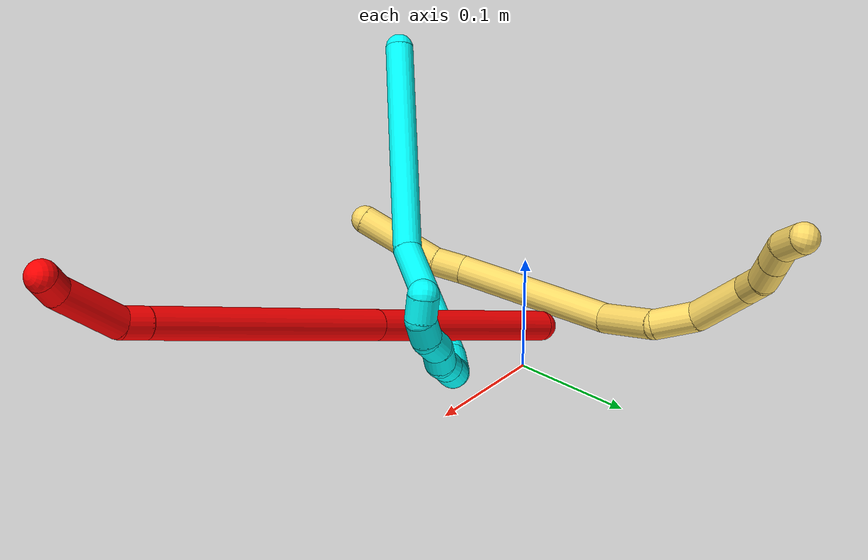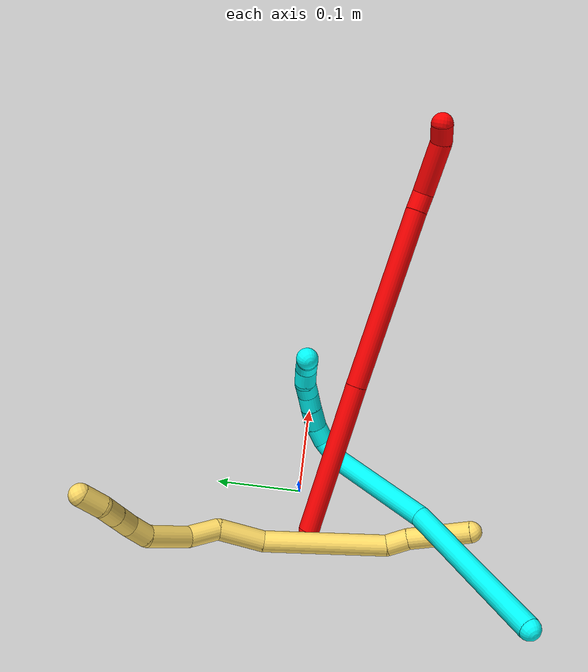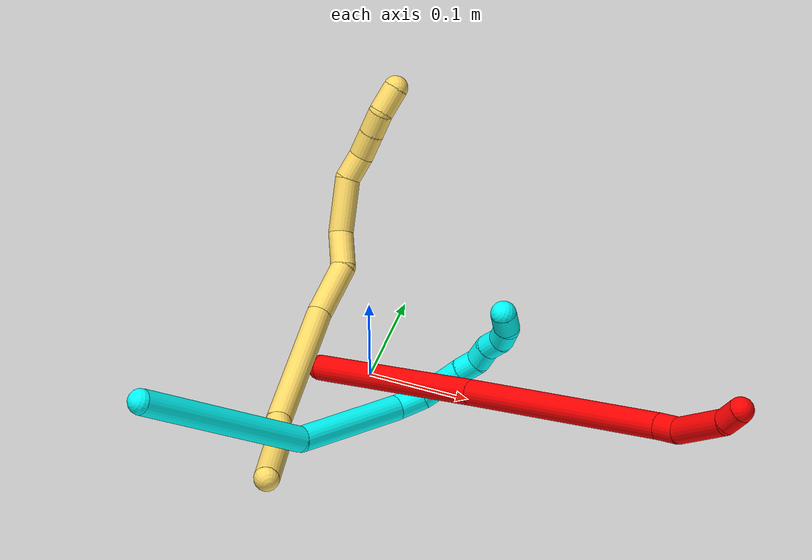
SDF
<sdf version="1.7">
 <world name="default">
  <model name="2">
   <static>0</static>
   <link name="2">
    <collision name="collision-cylinder-e_1_1_4">
     <pose>0.016838 -0.003649 0.089598 0.040701 0.185608 0.003789</pose>
     <geometry><cylinder><radius>0.0125</radius><length>0.182479</length></cylinder></geometry>
     <surface>
      <friction><ode><mu>1.16</mu><mu2>1.16</mu2><slip1>0</slip1><slip2>0</slip2></ode></friction>
      <contact><ode><kp>1e+06</kp><kd>1</kd><max_vel>0</max_vel><min_depth>0.001</min_depth></ode></contact>
     </surface>
    </collision>
    <visual name="visual-cylinder-e_1_1_4">
     <pose>0.016838 -0.003649 0.089598 0.040701 0.185608 0.003789</pose>
     <geometry><cylinder><radius>0.0125</radius><length>0.182479</length></cylinder></geometry>
     <material><ambient>1 0 0 1</ambient></material>
    </visual>
    <collision name="collision-cylinder-e_2_4_5">
     <pose>0.054227 -0.012598 0.283583 0.050736 0.194154 0.004942</pose>
     <geometry><cylinder><radius>0.0125</radius><length>0.213045</length></cylinder></geometry>
     <surface>
      <friction><ode><mu>1.16</mu><mu2>1.16</mu2><slip1>0</slip1><slip2>0</slip2></ode></friction>
      <contact><ode><kp>1e+06</kp><kd>1</kd><max_vel>0</max_vel><min_depth>0.001</min_depth></ode></contact>
     </surface>
    </collision>
    <visual name="visual-cylinder-e_2_4_5">
     <pose>0.054227 -0.012598 0.283583 0.050736 0.194154 0.004942</pose>
     <geometry><cylinder><radius>0.0125</radius><length>0.213045</length></cylinder></geometry>
     <material><ambient>1 0 0 1</ambient></material>
    </visual>
    <collision name="collision-cylinder-e_3_5_6">
     <pose>0.077257 -0.018692 0.398516 0.075031 0.230072 0.008674</pose>
     <geometry><cylinder><radius>0.0125</radius><length>0.021726</length></cylinder></geometry>
     <surface>
      <friction><ode><mu>1.16</mu><mu2>1.16</mu2><slip1>0</slip1><slip2>0</slip2></ode></friction>
      <contact><ode><kp>1e+06</kp><kd>1</kd><max_vel>0</max_vel><min_depth>0.001</min_depth></ode></contact>
     </surface>
    </collision>
    <visual name="visual-cylinder-e_3_5_6">
     <pose>0.077257 -0.018692 0.398516 0.075031 0.230072 0.008674</pose>
     <geometry><cylinder><radius>0.0125</radius><length>0.021726</length></cylinder></geometry>
     <material><ambient>1 0 0 1</ambient></material>
    </visual>
    <collision name="collision-cylinder-e_4_6_7">
     <pose>0.075902 -0.027301 0.438291 0.261329 -0.125984 -0.016577</pose>
     <geometry><cylinder><radius>0.0125</radius><length>0.060993</length></cylinder></geometry>
     <surface>
      <friction><ode><mu>1.16</mu><mu2>1.16</mu2><slip1>0</slip1><slip2>0</slip2></ode></friction>
      <contact><ode><kp>1e+06</kp><kd>1</kd><max_vel>0</max_vel><min_depth>0.001</min_depth></ode></contact>
     </surface>
    </collision>
    <visual name="visual-cylinder-e_4_6_7">
     <pose>0.075902 -0.027301 0.438291 0.261329 -0.125984 -0.016577</pose>
     <geometry><cylinder><radius>0.0125</radius><length>0.060993</length></cylinder></geometry>
     <material><ambient>1 0 0 1</ambient></material>
    </visual>
    <collision name="collision-cylinder-e_5_7_2">
     <pose>0.067057 -0.036655 0.47705 0.159932 -0.478965 -0.039129</pose>
     <geometry><cylinder><radius>0.0125</radius><length>0.021757</length></cylinder></geometry>
     <surface>
      <friction><ode><mu>1.16</mu><mu2>1.16</mu2><slip1>0</slip1><slip2>0</slip2></ode></friction>
      <contact><ode><kp>1e+06</kp><kd>1</kd><max_vel>0</max_vel><min_depth>0.001</min_depth></ode></contact>
     </surface>
    </collision>
    <visual name="visual-cylinder-e_5_7_2">
     <pose>0.067057 -0.036655 0.47705 0.159932 -0.478965 -0.039129</pose>
     <geometry><cylinder><radius>0.0125</radius><length>0.021757</length></cylinder></geometry>
     <material><ambient>1 0 0 1</ambient></material>
    </visual>
    <collision name="collision-sphere-2">
     <pose>0.062043 -0.038193 0.486581 0 -0 0</pose>
     <geometry><sphere><radius>0.0125</radius></sphere></geometry>
     <surface>
      <friction><ode><mu>1.16</mu><mu2>1.16</mu2><slip1>0</slip1><slip2>0</slip2></ode></friction>
      <contact><ode><kp>1e+06</kp><kd>1</kd><max_vel>0</max_vel><min_depth>0.001</min_depth></ode></contact>
     </surface>
    </collision>
    <visual name="visual-sphere-2">
     <pose>0.062043 -0.038193 0.486581 0 -0 0</pose>
     <geometry><sphere><radius>0.0125</radius></sphere></geometry>
     <material><ambient>1 0 0 1</ambient></material>
    </visual>
    <collision name="collision-sphere-7">
     <pose>0.07207 -0.035118 0.467518 0 -0 0</pose>
     <geometry><sphere><radius>0.0125</radius></sphere></geometry>
     <surface>
      <friction><ode><mu>1.16</mu><mu2>1.16</mu2><slip1>0</slip1><slip2>0</slip2></ode></friction>
      <contact><ode><kp>1e+06</kp><kd>1</kd><max_vel>0</max_vel><min_depth>0.001</min_depth></ode></contact>
     </surface>
    </collision>
    <visual name="visual-sphere-7">
     <pose>0.07207 -0.035118 0.467518 0 -0 0</pose>
     <geometry><sphere><radius>0.0125</radius></sphere></geometry>
     <material><ambient>1 0 0 1</ambient></material>
    </visual>
    <collision name="collision-sphere-6">
     <pose>0.079734 -0.019484 0.409063 0 -0 0</pose>
     <geometry><sphere><radius>0.0125</radius></sphere></geometry>
     <surface>
      <friction><ode><mu>1.16</mu><mu2>1.16</mu2><slip1>0</slip1><slip2>0</slip2></ode></friction>
      <contact><ode><kp>1e+06</kp><kd>1</kd><max_vel>0</max_vel><min_depth>0.001</min_depth></ode></contact>
     </surface>
    </collision>
    <visual name="visual-sphere-6">
     <pose>0.079734 -0.019484 0.409063 0 -0 0</pose>
     <geometry><sphere><radius>0.0125</radius></sphere></geometry>
     <material><ambient>1 0 0 1</ambient></material>
    </visual>
    <collision name="collision-sphere-5">
     <pose>0.074779 -0.017899 0.387969 0 -0 0</pose>
     <geometry><sphere><radius>0.0125</radius></sphere></geometry>
     <surface>
      <friction><ode><mu>1.16</mu><mu2>1.16</mu2><slip1>0</slip1><slip2>0</slip2></ode></friction>
      <contact><ode><kp>1e+06</kp><kd>1</kd><max_vel>0</max_vel><min_depth>0.001</min_depth></ode></contact>
     </surface>
    </collision>
    <visual name="visual-sphere-5">
     <pose>0.074779 -0.017899 0.387969 0 -0 0</pose>
     <geometry><sphere><radius>0.0125</radius></sphere></geometry>
     <material><ambient>1 0 0 1</ambient></material>
    </visual>
    <collision name="collision-sphere-1">
     <geometry><sphere><radius>0.0125</radius></sphere></geometry>
     <surface>
      <friction><ode><mu>1.16</mu><mu2>1.16</mu2><slip1>0</slip1><slip2>0</slip2></ode></friction>
      <contact><ode><kp>1e+06</kp><kd>1</kd><max_vel>0</max_vel><min_depth>0.001</min_depth></ode></contact>
     </surface>
    </collision>
    <visual name="visual-sphere-1">
     <geometry><sphere><radius>0.0125</radius></sphere></geometry>
     <material><ambient>1 0 0 1</ambient></material>
    </visual>
    <collision name="collision-sphere-4">
     <pose>0.033675 -0.007297 0.179196 0 -0 0</pose>
     <geometry><sphere><radius>0.0125</radius></sphere></geometry>
     <surface>
      <friction><ode><mu>1.16</mu><mu2>1.16</mu2><slip1>0</slip1><slip2>0</slip2></ode></friction>
      <contact><ode><kp>1e+06</kp><kd>1</kd><max_vel>0</max_vel><min_depth>0.001</min_depth></ode></contact>
     </surface>
    </collision>
    <visual name="visual-sphere-4">
     <pose>0.033675 -0.007297 0.179196 0 -0 0</pose>
     <geometry><sphere><radius>0.0125</radius></sphere></geometry>
     <material><ambient>1 0 0 1</ambient></material>
    </visual>
    <inertial>
     <pose>0.044785 -0.012437 0.245071 0 -0 0</pose>
     <mass>0.5</mass>
     <inertia>
      <ixx>0.001338</ixx>
      <ixy>0</ixy>
      <ixz>0</ixz>
      <iyy>0.001353</iyy>
      <iyz>0</iyz>
      <izz>-0.000144</izz>
     </inertia>
    </inertial>
   </link>
   <pose>-0.045713 -0.01738 0.011486 -0.827673 0.813011 -1.04041</pose>
  </model>
  <model name="3">
   <static>0</static>
   <link name="3">
    <collision name="collision-cylinder-e_1_1_4">
     <pose>-0.005636 0.009255 -0.098503 -3.04791 -0.056909 1.09134</pose>
     <geometry><cylinder><radius>0.0125</radius><length>0.198195</length></cylinder></geometry>
     <surface>
      <friction><ode><mu>1.16</mu><mu2>1.16</mu2><slip1>0</slip1><slip2>0</slip2></ode></friction>
      <contact><ode><kp>1e+06</kp><kd>1</kd><max_vel>0</max_vel><min_depth>0.001</min_depth></ode></contact>
     </surface>
    </collision>
    <visual name="visual-cylinder-e_1_1_4">
     <pose>-0.005636 0.009255 -0.098503 -3.04791 -0.056909 1.09134</pose>
     <geometry><cylinder><radius>0.0125</radius><length>0.198195</length></cylinder></geometry>
     <material><ambient>0.003922 1 0.996078 1</ambient></material>
    </visual>
    <collision name="collision-cylinder-e_2_4_5">
     <pose>-0.00883 0.048797 -0.2509 -2.62962 0.039489 -0.150612</pose>
     <geometry><cylinder><radius>0.0125</radius><length>0.123739</length></cylinder></geometry>
     <surface>
      <friction><ode><mu>1.16</mu><mu2>1.16</mu2><slip1>0</slip1><slip2>0</slip2></ode></friction>
      <contact><ode><kp>1e+06</kp><kd>1</kd><max_vel>0</max_vel><min_depth>0.001</min_depth></ode></contact>
     </surface>
    </collision>
    <visual name="visual-cylinder-e_2_4_5">
     <pose>-0.00883 0.048797 -0.2509 -2.62962 0.039489 -0.150612</pose>
     <geometry><cylinder><radius>0.0125</radius><length>0.123739</length></cylinder></geometry>
     <material><ambient>0.003922 1 0.996078 1</ambient></material>
    </visual>
    <collision name="collision-cylinder-e_3_5_6">
     <pose>0.000256 0.086806 -0.314841 -2.48619 0.482936 -1.25386</pose>
     <geometry><cylinder><radius>0.0125</radius><length>0.028615</length></cylinder></geometry>
     <surface>
      <friction><ode><mu>1.16</mu><mu2>1.16</mu2><slip1>0</slip1><slip2>0</slip2></ode></friction>
      <contact><ode><kp>1e+06</kp><kd>1</kd><max_vel>0</max_vel><min_depth>0.001</min_depth></ode></contact>
     </surface>
    </collision>
    <visual name="visual-cylinder-e_3_5_6">
     <pose>0.000256 0.086806 -0.314841 -2.48619 0.482936 -1.25386</pose>
     <geometry><cylinder><radius>0.0125</radius><length>0.028615</length></cylinder></geometry>
     <material><ambient>0.003922 1 0.996078 1</ambient></material>
    </visual>
    <collision name="collision-cylinder-e_4_6_7">
     <pose>0.01546 0.100808 -0.328613 -2.10646 0.864518 -1.36203</pose>
     <geometry><cylinder><radius>0.0125</radius><length>0.022501</length></cylinder></geometry>
     <surface>
      <friction><ode><mu>1.16</mu><mu2>1.16</mu2><slip1>0</slip1><slip2>0</slip2></ode></friction>
      <contact><ode><kp>1e+06</kp><kd>1</kd><max_vel>0</max_vel><min_depth>0.001</min_depth></ode></contact>
     </surface>
    </collision>
    <visual name="visual-cylinder-e_4_6_7">
     <pose>0.01546 0.100808 -0.328613 -2.10646 0.864518 -1.36203</pose>
     <geometry><cylinder><radius>0.0125</radius><length>0.022501</length></cylinder></geometry>
     <material><ambient>0.003922 1 0.996078 1</ambient></material>
    </visual>
    <collision name="collision-cylinder-e_5_7_8">
     <pose>0.035534 0.113024 -0.333895 -1.82699 1.08109 -1.32191</pose>
     <geometry><cylinder><radius>0.0125</radius><length>0.026098</length></cylinder></geometry>
     <surface>
      <friction><ode><mu>1.16</mu><mu2>1.16</mu2><slip1>0</slip1><slip2>0</slip2></ode></friction>
      <contact><ode><kp>1e+06</kp><kd>1</kd><max_vel>0</max_vel><min_depth>0.001</min_depth></ode></contact>
     </surface>
    </collision>
    <visual name="visual-cylinder-e_5_7_8">
     <pose>0.035534 0.113024 -0.333895 -1.82699 1.08109 -1.32191</pose>
     <geometry><cylinder><radius>0.0125</radius><length>0.026098</length></cylinder></geometry>
     <material><ambient>0.003922 1 0.996078 1</ambient></material>
    </visual>
    <collision name="collision-cylinder-e_6_8_9">
     <pose>0.056256 0.123103 -0.337199 -1.97019 1.1166 -1.51062</pose>
     <geometry><cylinder><radius>0.0125</radius><length>0.020491</length></cylinder></geometry>
     <surface>
      <friction><ode><mu>1.16</mu><mu2>1.16</mu2><slip1>0</slip1><slip2>0</slip2></ode></friction>
      <contact><ode><kp>1e+06</kp><kd>1</kd><max_vel>0</max_vel><min_depth>0.001</min_depth></ode></contact>
     </surface>
    </collision>
    <visual name="visual-cylinder-e_6_8_9">
     <pose>0.056256 0.123103 -0.337199 -1.97019 1.1166 -1.51062</pose>
     <geometry><cylinder><radius>0.0125</radius><length>0.020491</length></cylinder></geometry>
     <material><ambient>0.003922 1 0.996078 1</ambient></material>
    </visual>
    <collision name="collision-cylinder-e_7_9_10">
     <pose>0.073926 0.132318 -0.33659 -1.13608 0.986711 -0.661147</pose>
     <geometry><cylinder><radius>0.0125</radius><length>0.020291</length></cylinder></geometry>
     <surface>
      <friction><ode><mu>1.16</mu><mu2>1.16</mu2><slip1>0</slip1><slip2>0</slip2></ode></friction>
      <contact><ode><kp>1e+06</kp><kd>1</kd><max_vel>0</max_vel><min_depth>0.001</min_depth></ode></contact>
     </surface>
    </collision>
    <visual name="visual-cylinder-e_7_9_10">
     <pose>0.073926 0.132318 -0.33659 -1.13608 0.986711 -0.661147</pose>
     <geometry><cylinder><radius>0.0125</radius><length>0.020291</length></cylinder></geometry>
     <material><ambient>0.003922 1 0.996078 1</ambient></material>
    </visual>
    <collision name="collision-cylinder-e_8_10_11">
     <pose>0.092115 0.139697 -0.333686 -1.33717 1.33184 -1.11087</pose>
     <geometry><cylinder><radius>0.0125</radius><length>0.02002</length></cylinder></geometry>
     <surface>
      <friction><ode><mu>1.16</mu><mu2>1.16</mu2><slip1>0</slip1><slip2>0</slip2></ode></friction>
      <contact><ode><kp>1e+06</kp><kd>1</kd><max_vel>0</max_vel><min_depth>0.001</min_depth></ode></contact>
     </surface>
    </collision>
    <visual name="visual-cylinder-e_8_10_11">
     <pose>0.092115 0.139697 -0.333686 -1.33717 1.33184 -1.11087</pose>
     <geometry><cylinder><radius>0.0125</radius><length>0.02002</length></cylinder></geometry>
     <material><ambient>0.003922 1 0.996078 1</ambient></material>
    </visual>
    <collision name="collision-cylinder-e_9_11_12">
     <pose>0.110116 0.145369 -0.328601 -0.638452 0.971872 -0.345675</pose>
     <geometry><cylinder><radius>0.0125</radius><length>0.020039</length></cylinder></geometry>
     <surface>
      <friction><ode><mu>1.16</mu><mu2>1.16</mu2><slip1>0</slip1><slip2>0</slip2></ode></friction>
      <contact><ode><kp>1e+06</kp><kd>1</kd><max_vel>0</max_vel><min_depth>0.001</min_depth></ode></contact>
     </surface>
    </collision>
    <visual name="visual-cylinder-e_9_11_12">
     <pose>0.110116 0.145369 -0.328601 -0.638452 0.971872 -0.345675</pose>
     <geometry><cylinder><radius>0.0125</radius><length>0.020039</length></cylinder></geometry>
     <material><ambient>0.003922 1 0.996078 1</ambient></material>
    </visual>
    <collision name="collision-cylinder-e_10_12_2">
     <pose>0.123194 0.153272 -0.316551 -0.543188 0.500563 -0.14214</pose>
     <geometry><cylinder><radius>0.0125</radius><length>0.020012</length></cylinder></geometry>
     <surface>
      <friction><ode><mu>1.16</mu><mu2>1.16</mu2><slip1>0</slip1><slip2>0</slip2></ode></friction>
      <contact><ode><kp>1e+06</kp><kd>1</kd><max_vel>0</max_vel><min_depth>0.001</min_depth></ode></contact>
     </surface>
    </collision>
    <visual name="visual-cylinder-e_10_12_2">
     <pose>0.123194 0.153272 -0.316551 -0.543188 0.500563 -0.14214</pose>
     <geometry><cylinder><radius>0.0125</radius><length>0.020012</length></cylinder></geometry>
     <material><ambient>0.003922 1 0.996078 1</ambient></material>
    </visual>
    <collision name="collision-sphere-2">
     <pose>0.127996 0.157809 -0.309036 0 -0 0</pose>
     <geometry><sphere><radius>0.0125</radius></sphere></geometry>
     <surface>
      <friction><ode><mu>1.16</mu><mu2>1.16</mu2><slip1>0</slip1><slip2>0</slip2></ode></friction>
      <contact><ode><kp>1e+06</kp><kd>1</kd><max_vel>0</max_vel><min_depth>0.001</min_depth></ode></contact>
     </surface>
    </collision>
    <visual name="visual-sphere-2">
     <pose>0.127996 0.157809 -0.309036 0 -0 0</pose>
     <geometry><sphere><radius>0.0125</radius></sphere></geometry>
     <material><ambient>0.003922 1 0.996078 1</ambient></material>
    </visual>
    <collision name="collision-sphere-12">
     <pose>0.118392 0.148735 -0.324065 0 -0 0</pose>
     <geometry><sphere><radius>0.0125</radius></sphere></geometry>
     <surface>
      <friction><ode><mu>1.16</mu><mu2>1.16</mu2><slip1>0</slip1><slip2>0</slip2></ode></friction>
      <contact><ode><kp>1e+06</kp><kd>1</kd><max_vel>0</max_vel><min_depth>0.001</min_depth></ode></contact>
     </surface>
    </collision>
    <visual name="visual-sphere-12">
     <pose>0.118392 0.148735 -0.324065 0 -0 0</pose>
     <geometry><sphere><radius>0.0125</radius></sphere></geometry>
     <material><ambient>0.003922 1 0.996078 1</ambient></material>
    </visual>
    <collision name="collision-sphere-11">
     <pose>0.101841 0.142002 -0.333137 0 -0 0</pose>
     <geometry><sphere><radius>0.0125</radius></sphere></geometry>
     <surface>
      <friction><ode><mu>1.16</mu><mu2>1.16</mu2><slip1>0</slip1><slip2>0</slip2></ode></friction>
      <contact><ode><kp>1e+06</kp><kd>1</kd><max_vel>0</max_vel><min_depth>0.001</min_depth></ode></contact>
     </surface>
    </collision>
    <visual name="visual-sphere-11">
     <pose>0.101841 0.142002 -0.333137 0 -0 0</pose>
     <geometry><sphere><radius>0.0125</radius></sphere></geometry>
     <material><ambient>0.003922 1 0.996078 1</ambient></material>
    </visual>
    <collision name="collision-sphere-10">
     <pose>0.08239 0.137392 -0.334234 0 -0 0</pose>
     <geometry><sphere><radius>0.0125</radius></sphere></geometry>
     <surface>
      <friction><ode><mu>1.16</mu><mu2>1.16</mu2><slip1>0</slip1><slip2>0</slip2></ode></friction>
      <contact><ode><kp>1e+06</kp><kd>1</kd><max_vel>0</max_vel><min_depth>0.001</min_depth></ode></contact>
     </surface>
    </collision>
    <visual name="visual-sphere-10">
     <pose>0.08239 0.137392 -0.334234 0 -0 0</pose>
     <geometry><sphere><radius>0.0125</radius></sphere></geometry>
     <material><ambient>0.003922 1 0.996078 1</ambient></material>
    </visual>
    <collision name="collision-sphere-9">
     <pose>0.065462 0.127244 -0.338947 0 -0 0</pose>
     <geometry><sphere><radius>0.0125</radius></sphere></geometry>
     <surface>
      <friction><ode><mu>1.16</mu><mu2>1.16</mu2><slip1>0</slip1><slip2>0</slip2></ode></friction>
      <contact><ode><kp>1e+06</kp><kd>1</kd><max_vel>0</max_vel><min_depth>0.001</min_depth></ode></contact>
     </surface>
    </collision>
    <visual name="visual-sphere-9">
     <pose>0.065462 0.127244 -0.338947 0 -0 0</pose>
     <geometry><sphere><radius>0.0125</radius></sphere></geometry>
     <material><ambient>0.003922 1 0.996078 1</ambient></material>
    </visual>
    <collision name="collision-sphere-4">
     <pose>-0.011273 0.018511 -0.197006 0 -0 0</pose>
     <geometry><sphere><radius>0.0125</radius></sphere></geometry>
     <surface>
      <friction><ode><mu>1.16</mu><mu2>1.16</mu2><slip1>0</slip1><slip2>0</slip2></ode></friction>
      <contact><ode><kp>1e+06</kp><kd>1</kd><max_vel>0</max_vel><min_depth>0.001</min_depth></ode></contact>
     </surface>
    </collision>
    <visual name="visual-sphere-4">
     <pose>-0.011273 0.018511 -0.197006 0 -0 0</pose>
     <geometry><sphere><radius>0.0125</radius></sphere></geometry>
     <material><ambient>0.003922 1 0.996078 1</ambient></material>
    </visual>
    <collision name="collision-sphere-1">
     <geometry><sphere><radius>0.0125</radius></sphere></geometry>
     <surface>
      <friction><ode><mu>1.16</mu><mu2>1.16</mu2><slip1>0</slip1><slip2>0</slip2></ode></friction>
      <contact><ode><kp>1e+06</kp><kd>1</kd><max_vel>0</max_vel><min_depth>0.001</min_depth></ode></contact>
     </surface>
    </collision>
    <visual name="visual-sphere-1">
     <geometry><sphere><radius>0.0125</radius></sphere></geometry>
     <material><ambient>0.003922 1 0.996078 1</ambient></material>
    </visual>
    <collision name="collision-sphere-8">
     <pose>0.047049 0.118961 -0.335451 0 -0 0</pose>
     <geometry><sphere><radius>0.0125</radius></sphere></geometry>
     <surface>
      <friction><ode><mu>1.16</mu><mu2>1.16</mu2><slip1>0</slip1><slip2>0</slip2></ode></friction>
      <contact><ode><kp>1e+06</kp><kd>1</kd><max_vel>0</max_vel><min_depth>0.001</min_depth></ode></contact>
     </surface>
    </collision>
    <visual name="visual-sphere-8">
     <pose>0.047049 0.118961 -0.335451 0 -0 0</pose>
     <geometry><sphere><radius>0.0125</radius></sphere></geometry>
     <material><ambient>0.003922 1 0.996078 1</ambient></material>
    </visual>
    <collision name="collision-sphere-5">
     <pose>-0.006388 0.079083 -0.304795 0 -0 0</pose>
     <geometry><sphere><radius>0.0125</radius></sphere></geometry>
     <surface>
      <friction><ode><mu>1.16</mu><mu2>1.16</mu2><slip1>0</slip1><slip2>0</slip2></ode></friction>
      <contact><ode><kp>1e+06</kp><kd>1</kd><max_vel>0</max_vel><min_depth>0.001</min_depth></ode></contact>
     </surface>
    </collision>
    <visual name="visual-sphere-5">
     <pose>-0.006388 0.079083 -0.304795 0 -0 0</pose>
     <geometry><sphere><radius>0.0125</radius></sphere></geometry>
     <material><ambient>0.003922 1 0.996078 1</ambient></material>
    </visual>
    <collision name="collision-sphere-6">
     <pose>0.006901 0.094529 -0.324887 0 -0 0</pose>
     <geometry><sphere><radius>0.0125</radius></sphere></geometry>
     <surface>
      <friction><ode><mu>1.16</mu><mu2>1.16</mu2><slip1>0</slip1><slip2>0</slip2></ode></friction>
      <contact><ode><kp>1e+06</kp><kd>1</kd><max_vel>0</max_vel><min_depth>0.001</min_depth></ode></contact>
     </surface>
    </collision>
    <visual name="visual-sphere-6">
     <pose>0.006901 0.094529 -0.324887 0 -0 0</pose>
     <geometry><sphere><radius>0.0125</radius></sphere></geometry>
     <material><ambient>0.003922 1 0.996078 1</ambient></material>
    </visual>
    <collision name="collision-sphere-7">
     <pose>0.024019 0.107087 -0.33234 0 -0 0</pose>
     <geometry><sphere><radius>0.0125</radius></sphere></geometry>
     <surface>
      <friction><ode><mu>1.16</mu><mu2>1.16</mu2><slip1>0</slip1><slip2>0</slip2></ode></friction>
      <contact><ode><kp>1e+06</kp><kd>1</kd><max_vel>0</max_vel><min_depth>0.001</min_depth></ode></contact>
     </surface>
    </collision>
    <visual name="visual-sphere-7">
     <pose>0.024019 0.107087 -0.33234 0 -0 0</pose>
     <geometry><sphere><radius>0.0125</radius></sphere></geometry>
     <material><ambient>0.003922 1 0.996078 1</ambient></material>
    </visual>
    <inertial>
     <pose>0.016483 0.059117 -0.218051 0 -0 0</pose>
     <mass>0.5</mass>
     <inertia>
      <ixx>0.001028</ixx>
      <ixy>0</ixy>
      <ixz>0</ixz>
      <iyy>0.000134</iyy>
      <iyz>0</iyz>
      <izz>-0.000152</izz>
     </inertia>
    </inertial>
   </link>
   <pose>-0.128181 -0.24911 0.177984 0.597598 -0.676034 -0.206358</pose>
  </model>
  <model name="5">
   <static>0</static>
   <link name="5">
    <collision name="collision-cylinder-e_1_1_4">
     <pose>0.010447 0.010792 -0.033918 -2.83355 0.285491 -1.49371</pose>
     <geometry><cylinder><radius>0.0125</radius><length>0.074191</length></cylinder></geometry>
     <surface>
      <friction><ode><mu>1.16</mu><mu2>1.16</mu2><slip1>0</slip1><slip2>0</slip2></ode></friction>
      <contact><ode><kp>1e+06</kp><kd>1</kd><max_vel>0</max_vel><min_depth>0.001</min_depth></ode></contact>
     </surface>
    </collision>
    <visual name="visual-cylinder-e_1_1_4">
     <pose>0.010447 0.010792 -0.033918 -2.83355 0.285491 -1.49371</pose>
     <geometry><cylinder><radius>0.0125</radius><length>0.074191</length></cylinder></geometry>
     <material><ambient>1 0.858824 0.4 1</ambient></material>
    </visual>
    <collision name="collision-cylinder-e_2_4_5">
     <pose>0.02151 0.024422 -0.080826 -2.92649 0.046275 -0.422296</pose>
     <geometry><cylinder><radius>0.0125</radius><length>0.02662</length></cylinder></geometry>
     <surface>
      <friction><ode><mu>1.16</mu><mu2>1.16</mu2><slip1>0</slip1><slip2>0</slip2></ode></friction>
      <contact><ode><kp>1e+06</kp><kd>1</kd><max_vel>0</max_vel><min_depth>0.001</min_depth></ode></contact>
     </surface>
    </collision>
    <visual name="visual-cylinder-e_2_4_5">
     <pose>0.02151 0.024422 -0.080826 -2.92649 0.046275 -0.422296</pose>
     <geometry><cylinder><radius>0.0125</radius><length>0.02662</length></cylinder></geometry>
     <material><ambient>1 0.858824 0.4 1</ambient></material>
    </visual>
    <collision name="collision-cylinder-e_3_5_6">
     <pose>0.025977 0.066424 -0.154521 -2.56864 0.053263 -0.180361</pose>
     <geometry><cylinder><radius>0.0125</radius><length>0.14469</length></cylinder></geometry>
     <surface>
      <friction><ode><mu>1.16</mu><mu2>1.16</mu2><slip1>0</slip1><slip2>0</slip2></ode></friction>
      <contact><ode><kp>1e+06</kp><kd>1</kd><max_vel>0</max_vel><min_depth>0.001</min_depth></ode></contact>
     </surface>
    </collision>
    <visual name="visual-cylinder-e_3_5_6">
     <pose>0.025977 0.066424 -0.154521 -2.56864 0.053263 -0.180361</pose>
     <geometry><cylinder><radius>0.0125</radius><length>0.14469</length></cylinder></geometry>
     <material><ambient>1 0.858824 0.4 1</ambient></material>
    </visual>
    <collision name="collision-cylinder-e_4_6_7">
     <pose>0.026225 0.127308 -0.23259 -2.24518 -0.128878 0.2668</pose>
     <geometry><cylinder><radius>0.0125</radius><length>0.056079</length></cylinder></geometry>
     <surface>
      <friction><ode><mu>1.16</mu><mu2>1.16</mu2><slip1>0</slip1><slip2>0</slip2></ode></friction>
      <contact><ode><kp>1e+06</kp><kd>1</kd><max_vel>0</max_vel><min_depth>0.001</min_depth></ode></contact>
     </surface>
    </collision>
    <visual name="visual-cylinder-e_4_6_7">
     <pose>0.026225 0.127308 -0.23259 -2.24518 -0.128878 0.2668</pose>
     <geometry><cylinder><radius>0.0125</radius><length>0.056079</length></cylinder></geometry>
     <material><ambient>1 0.858824 0.4 1</ambient></material>
    </visual>
    <collision name="collision-cylinder-e_5_7_8">
     <pose>0.014928 0.156641 -0.265048 -2.67442 -0.427038 1.47805</pose>
     <geometry><cylinder><radius>0.0125</radius><length>0.037148</length></cylinder></geometry>
     <surface>
      <friction><ode><mu>1.16</mu><mu2>1.16</mu2><slip1>0</slip1><slip2>0</slip2></ode></friction>
      <contact><ode><kp>1e+06</kp><kd>1</kd><max_vel>0</max_vel><min_depth>0.001</min_depth></ode></contact>
     </surface>
    </collision>
    <visual name="visual-cylinder-e_5_7_8">
     <pose>0.014928 0.156641 -0.265048 -2.67442 -0.427038 1.47805</pose>
     <geometry><cylinder><radius>0.0125</radius><length>0.037148</length></cylinder></geometry>
     <material><ambient>1 0.858824 0.4 1</ambient></material>
    </visual>
    <collision name="collision-cylinder-e_6_8_9">
     <pose>-0.009003 0.181864 -0.29403 -2.2386 -0.626709 1.17818</pose>
     <geometry><cylinder><radius>0.0125</radius><length>0.055376</length></cylinder></geometry>
     <surface>
      <friction><ode><mu>1.16</mu><mu2>1.16</mu2><slip1>0</slip1><slip2>0</slip2></ode></friction>
      <contact><ode><kp>1e+06</kp><kd>1</kd><max_vel>0</max_vel><min_depth>0.001</min_depth></ode></contact>
     </surface>
    </collision>
    <visual name="visual-cylinder-e_6_8_9">
     <pose>-0.009003 0.181864 -0.29403 -2.2386 -0.626709 1.17818</pose>
     <geometry><cylinder><radius>0.0125</radius><length>0.055376</length></cylinder></geometry>
     <material><ambient>1 0.858824 0.4 1</ambient></material>
    </visual>
    <collision name="collision-cylinder-e_7_9_10">
     <pose>-0.030442 0.211384 -0.310828 -1.81046 -0.401095 0.506739</pose>
     <geometry><cylinder><radius>0.0125</radius><length>0.026637</length></cylinder></geometry>
     <surface>
      <friction><ode><mu>1.16</mu><mu2>1.16</mu2><slip1>0</slip1><slip2>0</slip2></ode></friction>
      <contact><ode><kp>1e+06</kp><kd>1</kd><max_vel>0</max_vel><min_depth>0.001</min_depth></ode></contact>
     </surface>
    </collision>
    <visual name="visual-cylinder-e_7_9_10">
     <pose>-0.030442 0.211384 -0.310828 -1.81046 -0.401095 0.506739</pose>
     <geometry><cylinder><radius>0.0125</radius><length>0.026637</length></cylinder></geometry>
     <material><ambient>1 0.858824 0.4 1</ambient></material>
    </visual>
    <collision name="collision-cylinder-e_8_10_11">
     <pose>-0.043524 0.234013 -0.314076 -1.6023 -0.633905 0.652807</pose>
     <geometry><cylinder><radius>0.0125</radius><length>0.026618</length></cylinder></geometry>
     <surface>
      <friction><ode><mu>1.16</mu><mu2>1.16</mu2><slip1>0</slip1><slip2>0</slip2></ode></friction>
      <contact><ode><kp>1e+06</kp><kd>1</kd><max_vel>0</max_vel><min_depth>0.001</min_depth></ode></contact>
     </surface>
    </collision>
    <visual name="visual-cylinder-e_8_10_11">
     <pose>-0.043524 0.234013 -0.314076 -1.6023 -0.633905 0.652807</pose>
     <geometry><cylinder><radius>0.0125</radius><length>0.026618</length></cylinder></geometry>
     <material><ambient>1 0.858824 0.4 1</ambient></material>
    </visual>
    <collision name="collision-cylinder-e_9_11_12">
     <pose>-0.058611 0.254427 -0.314665 -1.59663 -0.638819 0.654385</pose>
     <geometry><cylinder><radius>0.0125</radius><length>0.024165</length></cylinder></geometry>
     <surface>
      <friction><ode><mu>1.16</mu><mu2>1.16</mu2><slip1>0</slip1><slip2>0</slip2></ode></friction>
      <contact><ode><kp>1e+06</kp><kd>1</kd><max_vel>0</max_vel><min_depth>0.001</min_depth></ode></contact>
     </surface>
    </collision>
    <visual name="visual-cylinder-e_9_11_12">
     <pose>-0.058611 0.254427 -0.314665 -1.59663 -0.638819 0.654385</pose>
     <geometry><cylinder><radius>0.0125</radius><length>0.024165</length></cylinder></geometry>
     <material><ambient>1 0.858824 0.4 1</ambient></material>
    </visual>
    <collision name="collision-cylinder-e_10_12_2">
     <pose>-0.070606 0.276863 -0.319096 -1.88791 -0.343147 0.469648</pose>
     <geometry><cylinder><radius>0.0125</radius><length>0.028475</length></cylinder></geometry>
     <surface>
      <friction><ode><mu>1.16</mu><mu2>1.16</mu2><slip1>0</slip1><slip2>0</slip2></ode></friction>
      <contact><ode><kp>1e+06</kp><kd>1</kd><max_vel>0</max_vel><min_depth>0.001</min_depth></ode></contact>
     </surface>
    </collision>
    <visual name="visual-cylinder-e_10_12_2">
     <pose>-0.070606 0.276863 -0.319096 -1.88791 -0.343147 0.469648</pose>
     <geometry><cylinder><radius>0.0125</radius><length>0.028475</length></cylinder></geometry>
     <material><ambient>1 0.858824 0.4 1</ambient></material>
    </visual>
    <collision name="collision-sphere-2">
     <pose>-0.075396 0.289602 -0.323277 0 -0 0</pose>
     <geometry><sphere><radius>0.0125</radius></sphere></geometry>
     <surface>
      <friction><ode><mu>1.16</mu><mu2>1.16</mu2><slip1>0</slip1><slip2>0</slip2></ode></friction>
      <contact><ode><kp>1e+06</kp><kd>1</kd><max_vel>0</max_vel><min_depth>0.001</min_depth></ode></contact>
     </surface>
    </collision>
    <visual name="visual-sphere-2">
     <pose>-0.075396 0.289602 -0.323277 0 -0 0</pose>
     <geometry><sphere><radius>0.0125</radius></sphere></geometry>
     <material><ambient>1 0.858824 0.4 1</ambient></material>
    </visual>
    <collision name="collision-sphere-12">
     <pose>-0.065816 0.264124 -0.314915 0 -0 0</pose>
     <geometry><sphere><radius>0.0125</radius></sphere></geometry>
     <surface>
      <friction><ode><mu>1.16</mu><mu2>1.16</mu2><slip1>0</slip1><slip2>0</slip2></ode></friction>
      <contact><ode><kp>1e+06</kp><kd>1</kd><max_vel>0</max_vel><min_depth>0.001</min_depth></ode></contact>
     </surface>
    </collision>
    <visual name="visual-sphere-12">
     <pose>-0.065816 0.264124 -0.314915 0 -0 0</pose>
     <geometry><sphere><radius>0.0125</radius></sphere></geometry>
     <material><ambient>1 0.858824 0.4 1</ambient></material>
    </visual>
    <collision name="collision-sphere-11">
     <pose>-0.051407 0.244731 -0.314414 0 -0 0</pose>
     <geometry><sphere><radius>0.0125</radius></sphere></geometry>
     <surface>
      <friction><ode><mu>1.16</mu><mu2>1.16</mu2><slip1>0</slip1><slip2>0</slip2></ode></friction>
      <contact><ode><kp>1e+06</kp><kd>1</kd><max_vel>0</max_vel><min_depth>0.001</min_depth></ode></contact>
     </surface>
    </collision>
    <visual name="visual-sphere-11">
     <pose>-0.051407 0.244731 -0.314414 0 -0 0</pose>
     <geometry><sphere><radius>0.0125</radius></sphere></geometry>
     <material><ambient>1 0.858824 0.4 1</ambient></material>
    </visual>
    <collision name="collision-sphere-10">
     <pose>-0.035642 0.223295 -0.313739 0 -0 0</pose>
     <geometry><sphere><radius>0.0125</radius></sphere></geometry>
     <surface>
      <friction><ode><mu>1.16</mu><mu2>1.16</mu2><slip1>0</slip1><slip2>0</slip2></ode></friction>
      <contact><ode><kp>1e+06</kp><kd>1</kd><max_vel>0</max_vel><min_depth>0.001</min_depth></ode></contact>
     </surface>
    </collision>
    <visual name="visual-sphere-10">
     <pose>-0.035642 0.223295 -0.313739 0 -0 0</pose>
     <geometry><sphere><radius>0.0125</radius></sphere></geometry>
     <material><ambient>1 0.858824 0.4 1</ambient></material>
    </visual>
    <collision name="collision-sphere-9">
     <pose>-0.025242 0.199472 -0.307917 0 -0 0</pose>
     <geometry><sphere><radius>0.0125</radius></sphere></geometry>
     <surface>
      <friction><ode><mu>1.16</mu><mu2>1.16</mu2><slip1>0</slip1><slip2>0</slip2></ode></friction>
      <contact><ode><kp>1e+06</kp><kd>1</kd><max_vel>0</max_vel><min_depth>0.001</min_depth></ode></contact>
     </surface>
    </collision>
    <visual name="visual-sphere-9">
     <pose>-0.025242 0.199472 -0.307917 0 -0 0</pose>
     <geometry><sphere><radius>0.0125</radius></sphere></geometry>
     <material><ambient>1 0.858824 0.4 1</ambient></material>
    </visual>
    <collision name="collision-sphere-4">
     <pose>0.020894 0.021584 -0.067837 0 -0 0</pose>
     <geometry><sphere><radius>0.0125</radius></sphere></geometry>
     <surface>
      <friction><ode><mu>1.16</mu><mu2>1.16</mu2><slip1>0</slip1><slip2>0</slip2></ode></friction>
      <contact><ode><kp>1e+06</kp><kd>1</kd><max_vel>0</max_vel><min_depth>0.001</min_depth></ode></contact>
     </surface>
    </collision>
    <visual name="visual-sphere-4">
     <pose>0.020894 0.021584 -0.067837 0 -0 0</pose>
     <geometry><sphere><radius>0.0125</radius></sphere></geometry>
     <material><ambient>1 0.858824 0.4 1</ambient></material>
    </visual>
    <collision name="collision-sphere-1">
     <geometry><sphere><radius>0.0125</radius></sphere></geometry>
     <surface>
      <friction><ode><mu>1.16</mu><mu2>1.16</mu2><slip1>0</slip1><slip2>0</slip2></ode></friction>
      <contact><ode><kp>1e+06</kp><kd>1</kd><max_vel>0</max_vel><min_depth>0.001</min_depth></ode></contact>
     </surface>
    </collision>
    <visual name="visual-sphere-1">
     <geometry><sphere><radius>0.0125</radius></sphere></geometry>
     <material><ambient>1 0.858824 0.4 1</ambient></material>
    </visual>
    <collision name="collision-sphere-8">
     <pose>0.007235 0.164255 -0.280142 0 -0 0</pose>
     <geometry><sphere><radius>0.0125</radius></sphere></geometry>
     <surface>
      <friction><ode><mu>1.16</mu><mu2>1.16</mu2><slip1>0</slip1><slip2>0</slip2></ode></friction>
      <contact><ode><kp>1e+06</kp><kd>1</kd><max_vel>0</max_vel><min_depth>0.001</min_depth></ode></contact>
     </surface>
    </collision>
    <visual name="visual-sphere-8">
     <pose>0.007235 0.164255 -0.280142 0 -0 0</pose>
     <geometry><sphere><radius>0.0125</radius></sphere></geometry>
     <material><ambient>1 0.858824 0.4 1</ambient></material>
    </visual>
    <collision name="collision-sphere-5">
     <pose>0.022126 0.02726 -0.093815 0 -0 0</pose>
     <geometry><sphere><radius>0.0125</radius></sphere></geometry>
     <surface>
      <friction><ode><mu>1.16</mu><mu2>1.16</mu2><slip1>0</slip1><slip2>0</slip2></ode></friction>
      <contact><ode><kp>1e+06</kp><kd>1</kd><max_vel>0</max_vel><min_depth>0.001</min_depth></ode></contact>
     </surface>
    </collision>
    <visual name="visual-sphere-5">
     <pose>0.022126 0.02726 -0.093815 0 -0 0</pose>
     <geometry><sphere><radius>0.0125</radius></sphere></geometry>
     <material><ambient>1 0.858824 0.4 1</ambient></material>
    </visual>
    <collision name="collision-sphere-6">
     <pose>0.029829 0.105588 -0.215227 0 -0 0</pose>
     <geometry><sphere><radius>0.0125</radius></sphere></geometry>
     <surface>
      <friction><ode><mu>1.16</mu><mu2>1.16</mu2><slip1>0</slip1><slip2>0</slip2></ode></friction>
      <contact><ode><kp>1e+06</kp><kd>1</kd><max_vel>0</max_vel><min_depth>0.001</min_depth></ode></contact>
     </surface>
    </collision>
    <visual name="visual-sphere-6">
     <pose>0.029829 0.105588 -0.215227 0 -0 0</pose>
     <geometry><sphere><radius>0.0125</radius></sphere></geometry>
     <material><ambient>1 0.858824 0.4 1</ambient></material>
    </visual>
    <collision name="collision-sphere-7">
     <pose>0.022621 0.149028 -0.249953 0 -0 0</pose>
     <geometry><sphere><radius>0.0125</radius></sphere></geometry>
     <surface>
      <friction><ode><mu>1.16</mu><mu2>1.16</mu2><slip1>0</slip1><slip2>0</slip2></ode></friction>
      <contact><ode><kp>1e+06</kp><kd>1</kd><max_vel>0</max_vel><min_depth>0.001</min_depth></ode></contact>
     </surface>
    </collision>
    <visual name="visual-sphere-7">
     <pose>0.022621 0.149028 -0.249953 0 -0 0</pose>
     <geometry><sphere><radius>0.0125</radius></sphere></geometry>
     <material><ambient>1 0.858824 0.4 1</ambient></material>
    </visual>
    <inertial>
     <pose>0.002473 0.119965 -0.199055 0 -0 0</pose>
     <mass>0.5</mass>
     <inertia>
      <ixx>0.000226</ixx>
      <ixy>0</ixy>
      <ixz>0</ixz>
      <iyy>-0.000252</iyy>
      <iyz>0</iyz>
      <izz>-0.000216</izz>
     </inertia>
    </inertial>
   </link>
   <pose>-0.028774 -0.20269 0.057264 1.0988 1.08669 0.202198</pose>
  </model>
 </world>
</sdf>
